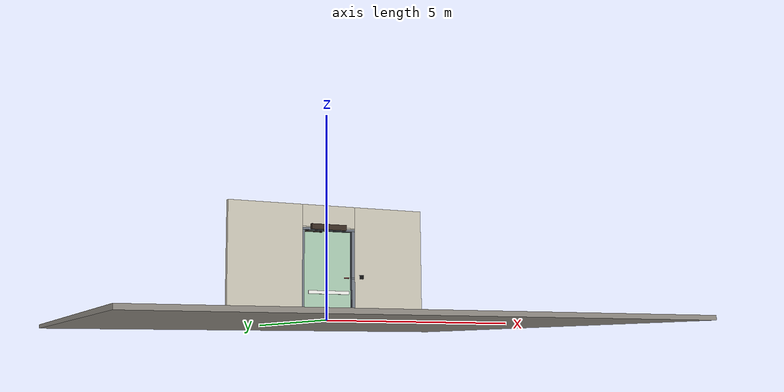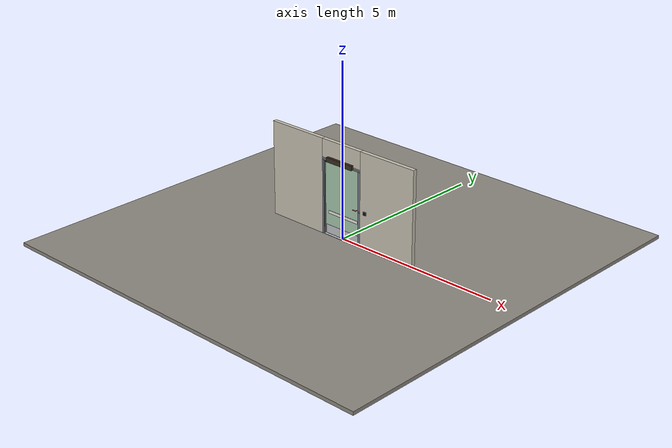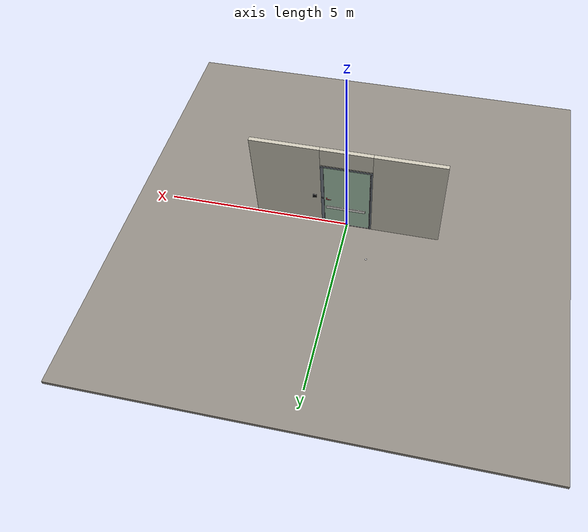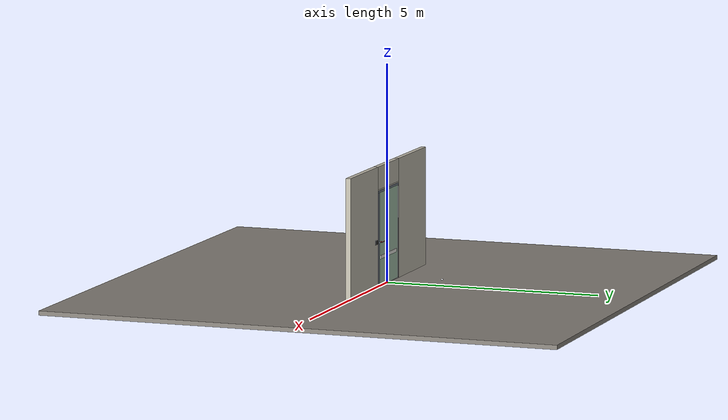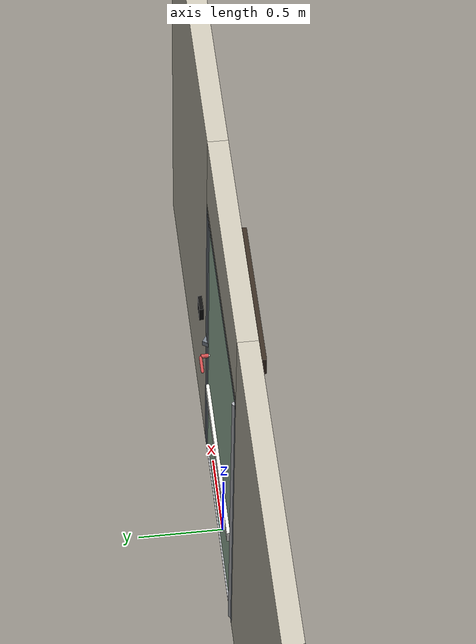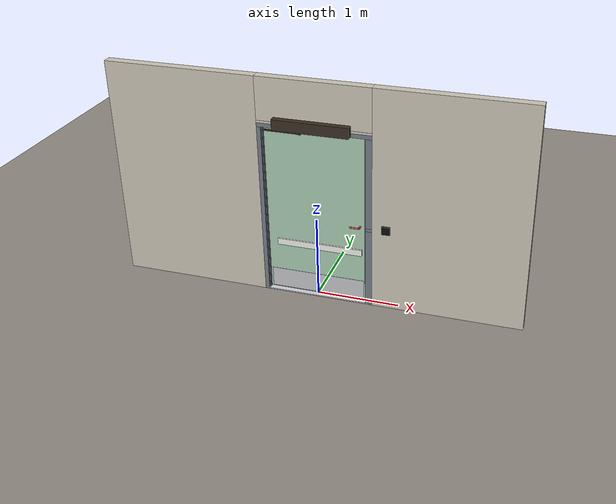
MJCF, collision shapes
<?xml version="1.0" ?>
<mujoco model="db0138_automatic_swing_full">
  <compiler angle="radian" meshdir="../../hardware" texturedir="../../textures" autolimits="true" inertiafromgeom="false"/>
  <option timestep="0.002" integrator="implicitfast" cone="elliptic" impratio="10" noslip_iterations="3">
    <flag multiccd="enable"/>
  </option>
  <size memory="16M"/>
  <default>
    <geom condim="4" solref="0.005 1" solimp="0.95 0.99 0.001"/>
    <joint solreflimit="0.005 1" solimplimit="0.95 0.99 0.001"/>
    <tendon solreflimit="0.005 1"/>
    <equality solref="0.002 1"/>
  </default>
  <visual>
    <headlight ambient="0.4 0.4 0.4" diffuse="0.7 0.7 0.7" specular="0.2 0.2 0.2"/>
    <quality shadowsize="4096"/>
    <map znear="0.01" zfar="60"/>
  </visual>
  <asset>
    <mesh name="lever_6268dcb28c" file="lever_6268dcb28c.obj"/>
    <material name="mat_floor" rgba="0.55 0.53 0.5 1" specular="0.2" shininess="0.15" reflectance="0"/>
    <material name="mat_wall" rgba="0.78 0.76 0.7 1" specular="0.2" shininess="0.1" reflectance="0"/>
    <material name="mat_leaf" rgba="0.65 0.78 0.68 1" specular="0.2" shininess="0.6" reflectance="0"/>
    <material name="mat_hinge" rgba="0.65 0.66 0.68 1" specular="0.74" shininess="0.5" reflectance="0.36"/>
    <material name="mat_op_stainless" rgba="0.75 0.76 0.77 1" specular="0.8" shininess="0.65" reflectance="0.4"/>
    <material name="mat_trim" rgba="0.85 0.66 0.3 1" specular="0.8" shininess="0.75" reflectance="0.4"/>
    <material name="mat_bolt" rgba="0.85 0.66 0.3 1" specular="0.8" shininess="0.75" reflectance="0.4"/>
    <material name="mat_frame" rgba="0.45 0.48 0.52 1" specular="0.32" shininess="0.6" reflectance="0.08"/>
    <material name="mat_seal" rgba="0.1 0.1 0.1 1" specular="0.2" shininess="0.1" reflectance="0"/>
    <material name="mat_threshold" rgba="0.8 0.81 0.83 1" specular="0.8" shininess="0.6" reflectance="0.4"/>
    <material name="mat_closer" rgba="0.22 0.17 0.13 1" specular="0.8" shininess="0.6" reflectance="0.4"/>
    <material name="mat_kick" rgba="0.75 0.76 0.77 1" specular="0.8" shininess="0.65" reflectance="0.4"/>
    <material name="mat_bumper" rgba="0.92 0.92 0.9 1" specular="0.2" shininess="0.6" reflectance="0"/>
    <material name="mat_wallreader" rgba="0.05 0.05 0.05 1" specular="0.38" shininess="0.3" reflectance="0.12"/>
    <material name="mat_stop" rgba="0.9 0.9 0.92 1" specular="0.8" shininess="0.9" reflectance="0.4"/>
    <texture name="skybox" type="skybox" builtin="gradient" rgb1="0.6 0.7 0.85" rgb2="0.9 0.92 0.95" width="256" height="256"/>
  </asset>
  <worldbody>
    <light name="sun" pos="1.5 -2.5 4" dir="-0.3 0.5 -0.8" directional="true" diffuse="0.8 0.8 0.8" specular="0.3 0.3 0.3" castshadow="true"/>
    <light name="fill" pos="-1.5 2.5 3" dir="0.3 -0.5 -0.7" directional="true" diffuse="0.35 0.35 0.4" castshadow="false"/>
    <camera name="robot_view" pos="0 -2.666313 1.812087" xyaxes="1 0 0 0 0.26963 0.962964" fovy="52"/>
    <camera name="far_view" pos="0 2.609312 1.812087" xyaxes="-1 0 0 0 -0.26963 0.962964" fovy="52"/>
    <camera name="iso" pos="2.004737 -2.244263 2.234138" xyaxes="0.741536 0.670913 0 -0.242917 0.268487 0.932151" fovy="46"/>
    <camera name="detail_handle" pos="0.623 -0.877 1.296" xyaxes="0.97561 0.219512 0 -0.070934 0.315262 0.94635" fovy="38"/>
    <geom name="floor" type="box" size="6 6 0.05" pos="0 0 -0.05" material="mat_floor" group="0" contype="1" conaffinity="1" friction="0.8 0.005 0.0001" density="2400"/>
    <geom name="wall_left" type="box" size="0.9185 0.0575 1.3735" pos="-1.5815 -0.0285 1.3735" material="mat_wall" group="0" contype="1" conaffinity="1" friction="0.6 0.005 0.0001" density="800"/>
    <geom name="wall_right" type="box" size="0.9035 0.0575 1.3735" pos="1.5965 -0.0285 1.3735" material="mat_wall" group="0" contype="1" conaffinity="1" friction="0.6 0.005 0.0001" density="800"/>
    <geom name="wall_header" type="box" size="0.678 0.0575 0.26" pos="0.015 -0.0285 2.487" material="mat_wall" group="0" contype="1" conaffinity="1" friction="0.6 0.005 0.0001" density="800"/>
    <geom name="jamb_hinge" type="box" size="0.025 0.0575 1.0735" pos="-0.638 -0.0285 1.0735" material="mat_frame" group="0" contype="1" conaffinity="1" friction="0.6 0.005 0.0001" density="300"/>
    <geom name="strike_1016_wall_n" type="box" size="0.04 0.03825 0.0183" pos="0.653 -0.04775 1.016" material="mat_frame" group="0" contype="1" conaffinity="1" friction="0.6 0.005 0.0001" density="300"/>
    <geom name="strike_1016_wall_p" type="box" size="0.04 0.008 0.0183" pos="0.653 0.0175 1.016" material="mat_frame" group="0" contype="1" conaffinity="1" friction="0.6 0.005 0.0001" density="300"/>
    <geom name="strike_1016_ramp" type="box" size="0.04 0.018028 0.0183" pos="0.656282 0.018312 1.016" quat="0.957092 0 0 -0.289784" material="mat_frame" group="0" contype="1" conaffinity="1" friction="0.12 0.005 0.0001" density="300"/>
    <geom name="strike_1016_back" type="box" size="0.0285 0.0095 0.0183" pos="0.6645 0 1.016" material="mat_frame" group="0" contype="1" conaffinity="1" friction="0.6 0.005 0.0001" density="300"/>
    <geom name="jamb_strike_0" type="box" size="0.04 0.0575 0.49885" pos="0.653 -0.0285 0.49885" material="mat_frame" group="0" contype="1" conaffinity="1" friction="0.6 0.005 0.0001" density="300"/>
    <geom name="jamb_strike_1" type="box" size="0.04 0.0575 0.55635" pos="0.653 -0.0285 1.59065" material="mat_frame" group="0" contype="1" conaffinity="1" friction="0.6 0.005 0.0001" density="300"/>
    <geom name="jamb_head" type="box" size="0.678 0.0575 0.025" pos="0.015 -0.0285 2.172" material="mat_frame" group="0" contype="1" conaffinity="1" friction="0.6 0.005 0.0001" density="300"/>
    <geom name="head_stud" type="box" size="0.678 0.0575 0.015" pos="0.015 -0.0285 2.212" material="mat_wall" group="0" contype="1" conaffinity="1" friction="0.6 0.005 0.0001" density="500"/>
    <geom name="stop_hinge" type="box" size="0.0055 0.016 1.0735" pos="-0.6075 -0.0385 1.0735" material="mat_frame" group="0" contype="1" conaffinity="1" friction="0.6 0.005 0.0001" density="300"/>
    <geom name="stop_strike" type="box" size="0.0055 0.016 1.0735" pos="0.6075 -0.0385 1.0735" material="mat_frame" group="0" contype="1" conaffinity="1" friction="0.6 0.005 0.0001" density="300"/>
    <geom name="stop_head" type="box" size="0.613 0.016 0.0055" pos="0 -0.0385 2.1415" material="mat_frame" group="0" contype="1" conaffinity="1" friction="0.6 0.005 0.0001" density="300"/>
    <geom name="seal_hinge" type="box" size="0.004 0.004 1.0735" pos="-0.61 -0.026 1.0735" material="mat_seal" group="1" contype="0" conaffinity="0" density="1100"/>
    <geom name="seal_strike" type="box" size="0.004 0.004 1.0735" pos="0.61 -0.026 1.0735" material="mat_seal" group="1" contype="0" conaffinity="0" density="1100"/>
    <geom name="seal_head" type="box" size="0.593 0.004 0.008" pos="0 -0.026 2.135" material="mat_seal" group="1" contype="0" conaffinity="0" density="1100"/>
    <geom name="threshold" type="box" size="0.663 0.0575 0.0065" pos="0 -0.0285 0.0065" material="mat_threshold" group="0" contype="1" conaffinity="1" friction="0.5 0.005 0.0001" density="2700"/>
    <geom name="auto_operator_header" type="box" size="0.45 0.065 0.065" pos="0 -0.097 2.22" material="mat_closer" group="0" contype="1" conaffinity="1" friction="0.6 0.005 0.0001" density="1500"/>
    <geom name="wave_sensor_n" type="box" size="0.05 0.012 0.05" pos="0.863 -0.098 1.05" material="mat_wallreader" group="0" contype="1" conaffinity="1" friction="0.6 0.005 0.0001" density="1000"/>
    <geom name="wave_sensor_p" type="box" size="0.05 0.012 0.05" pos="0.863 0.041 1.05" material="mat_wallreader" group="0" contype="1" conaffinity="1" friction="0.6 0.005 0.0001" density="1000"/>
    <geom name="wave_sensor_p_pad" type="box" size="0.04 0.058 0.04" pos="0.863 -0.0285 1.05" material="mat_wallreader" group="1" contype="0" conaffinity="0" density="7850"/>
    <geom name="floor_stop_dome" type="sphere" size="0.025" pos="-0.72023 1.059464 0" material="mat_stop" group="0" contype="1" conaffinity="1" friction="0.6 0.005 0.0001" density="7000"/>
    <site name="approach_point" pos="0 -1.5 0" quat="1 0 0 0" size="0.05" rgba="0.2 0.9 0.2 0.5" group="4"/>
    <site name="goal_point" pos="0 1.5 0" quat="1 0 0 0" size="0.05" rgba="0.2 0.9 0.2 0.5" group="4"/>
    <site name="door_plane_center" pos="0 0 1.0735" quat="1 0 0 0" size="0.02" rgba="0.2 0.9 0.2 0.5" group="4"/>
    <body name="leaf" pos="-0.613 0 0">
      <inertial pos="0.592018 -0.000092 1.032827" mass="91.59169" quat="0.50225 0.503552 0.495702 -0.498457" diaginertia="11.931007445 35.484453112 47.370872384"/>
      <joint name="leaf_hinge" type="hinge" axis="0 0 1" pos="0.003 0.029 0" limited="true" range="0 1.658063" solreflimit="0.02 1" damping="15.850995" frictionloss="4.850854" stiffness="19.0031" springref="-2.141756" armature="0.02"/>
      <geom name="leaf_slab" type="box" size="0.6095 0.022 1.063" pos="0.6125 0 1.08" material="mat_leaf" group="0" contype="1" conaffinity="1" friction="0.35 0.005 0.0001" density="1"/>
      <geom name="hinge_continuous" type="cylinder" size="0.0136 1.053" pos="0.003 0.029 1.08" material="mat_hinge" group="1" contype="0" conaffinity="0" density="2700"/>
      <geom name="leaf_latch_bolt_faceplate" type="box" size="0.0006 0.014 0.0283" pos="1.2214 0 1.016" material="mat_bolt" group="1" contype="0" conaffinity="0" density="8500"/>
      <geom name="auto_operator_arm" type="box" size="0.22 0.008 0.008" pos="0.25 -0.052 2.106" material="mat_closer" group="1" contype="0" conaffinity="0" density="2700"/>
      <geom name="auto_operator_arm_shoe" type="box" size="0.03 0.016 0.014" pos="0.44 -0.038 2.106" material="mat_closer" group="1" contype="0" conaffinity="0" density="2700"/>
      <geom name="kick_plate_n" type="box" size="0.5795 0.0008 0.125" pos="0.6125 -0.0228 0.152" material="mat_kick" group="2" contype="0" conaffinity="0" density="7900"/>
      <geom name="bumper_rail_n" type="box" size="0.5245 0.01 0.04" pos="0.6475 -0.032 0.667" material="mat_bumper" group="0" contype="1" conaffinity="1" friction="0.6 0.005 0.0001" density="1200"/>
      <geom name="bumper_rail_p" type="box" size="0.5245 0.01 0.04" pos="0.6475 0.032 0.667" material="mat_bumper" group="0" contype="1" conaffinity="1" friction="0.6 0.005 0.0001" density="1200"/>
      <site name="leaf_edge_mid" pos="1.222 0 1.063" quat="1 0 0 0" size="0.02" rgba="0.2 0.9 0.2 0.5" group="4"/>
      <body name="leaf_handle" pos="1.152 0 1.016">
        <inertial pos="-0.035149 0 0" mass="1.038236" quat="0 0.707107 0.707107 0" diaginertia="0.002348364 0.00382535 0.005606687"/>
        <joint name="leaf_handle_hinge" type="hinge" axis="0 -1 0" limited="true" range="0 0.96" damping="0.255791" frictionloss="0.05" stiffness="1.2" springref="-0.583333" armature="0.01"/>
        <geom name="leaf_handle_spindle" type="cylinder" size="0.006 0.03" pos="0 0 0" quat="0.707107 -0.707107 0 0" material="mat_op_stainless" group="1" contype="0" conaffinity="0" density="7850"/>
        <geom name="leaf_handle_lever_n" type="mesh" mesh="lever_6268dcb28c" pos="0 -0.022 0" quat="0.707107 0.707107 0 0" material="mat_op_stainless" group="1" contype="0" conaffinity="0" density="3000"/>
        <geom name="leaf_handle_lever_col_n" type="capsule" size="0.0095 0.0505" pos="-0.06 -0.077 0" quat="0.707107 0 -0.707107 0" material="mat_op_stainless" group="3" contype="1" conaffinity="1" rgba="0.8 0.3 0.3 0.25" friction="0.7 0.01 0.0001" density="3000"/>
        <geom name="leaf_handle_hub_col_n" type="cylinder" size="0.012 0.022" pos="0 -0.052 0" quat="0.707107 -0.707107 0 0" material="mat_op_stainless" group="3" contype="1" conaffinity="1" rgba="0.8 0.3 0.3 0.25" friction="0.6 0.005 0.0001" density="3000"/>
        <geom name="leaf_handle_lever_p" type="mesh" mesh="lever_6268dcb28c" pos="0 0.022 0" quat="-0.707107 0.707107 0 0" material="mat_op_stainless" group="1" contype="0" conaffinity="0" density="3000"/>
        <geom name="leaf_handle_lever_col_p" type="capsule" size="0.0095 0.0505" pos="-0.06 0.077 0" quat="0.707107 0 -0.707107 0" material="mat_op_stainless" group="3" contype="1" conaffinity="1" rgba="0.8 0.3 0.3 0.25" friction="0.7 0.01 0.0001" density="3000"/>
        <geom name="leaf_handle_hub_col_p" type="cylinder" size="0.012 0.022" pos="0 0.052 0" quat="0.707107 -0.707107 0 0" material="mat_op_stainless" group="3" contype="1" conaffinity="1" rgba="0.8 0.3 0.3 0.25" friction="0.6 0.005 0.0001" density="3000"/>
        <site name="leaf_handle_grip_n" pos="-0.096 -0.077 0" quat="1 0 0 0" size="0.012" rgba="0.2 0.9 0.2 0.5" group="4"/>
        <site name="leaf_handle_grip_p" pos="-0.096 0.077 0" quat="1 0 0 0" size="0.012" rgba="0.2 0.9 0.2 0.5" group="4"/>
      </body>
      <body name="leaf_latch_bolt" pos="1.222 0 1.016">
        <inertial pos="-0.0055 0 0" mass="0.074627" quat="0.92388 -0.382683 0 0" diaginertia="0.000002271 0.000013255 0.000013255"/>
        <joint name="leaf_latch_bolt_slide" type="slide" axis="-1 0 0" limited="true" range="0 0.019" damping="2" frictionloss="0.3" stiffness="600" springref="-0.01" armature="0.1"/>
        <geom name="leaf_latch_bolt_capsule" type="capsule" size="0.008 0.0165" pos="-0.0055 0 0" quat="0.707107 0 0.707107 0" material="mat_bolt" group="0" contype="1" conaffinity="1" friction="0.2 0.005 0.0001" density="8500"/>
      </body>
    </body>
  </worldbody>
  <tendon>
    <fixed name="leaf_latch_bolt_coupling" limited="true" range="0 10">
      <joint joint="leaf_latch_bolt_slide" coef="1"/>
      <joint joint="leaf_handle_hinge" coef="-0.020879"/>
    </fixed>
  </tendon>
  <actuator>
    <position name="swing_operator" joint="leaf_hinge" kp="150" kv="40" forcerange="-60 60" ctrlrange="0 1.6"/>
  </actuator>
  <sensor>
    <jointpos name="leaf_hinge_pos" joint="leaf_hinge"/>
    <jointvel name="leaf_hinge_vel" joint="leaf_hinge"/>
    <jointpos name="leaf_handle_hinge_pos" joint="leaf_handle_hinge"/>
    <jointvel name="leaf_handle_hinge_vel" joint="leaf_handle_hinge"/>
    <jointpos name="leaf_latch_bolt_slide_pos" joint="leaf_latch_bolt_slide"/>
    <jointvel name="leaf_latch_bolt_slide_vel" joint="leaf_latch_bolt_slide"/>
  </sensor>
</mujoco>
